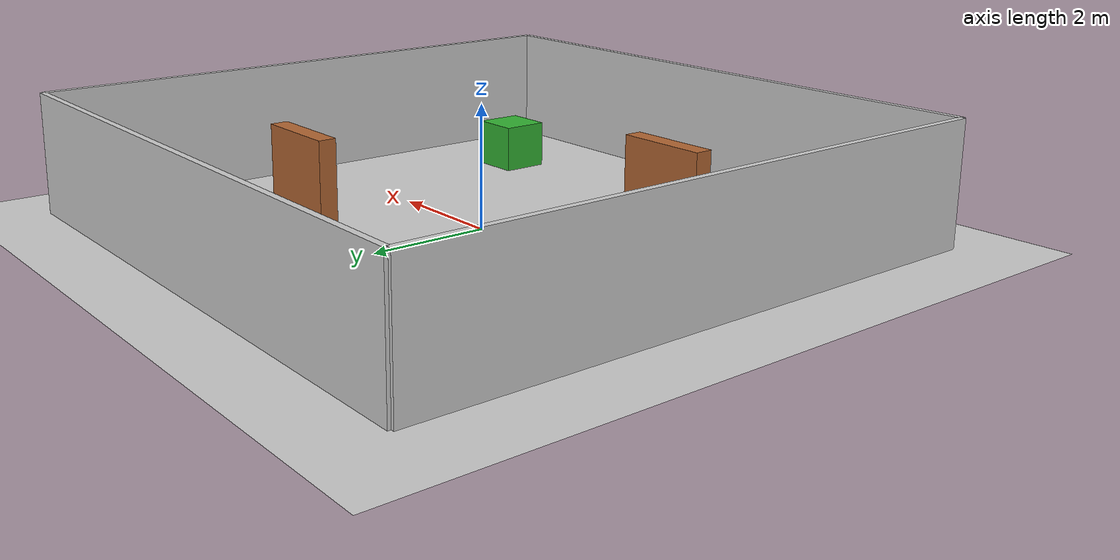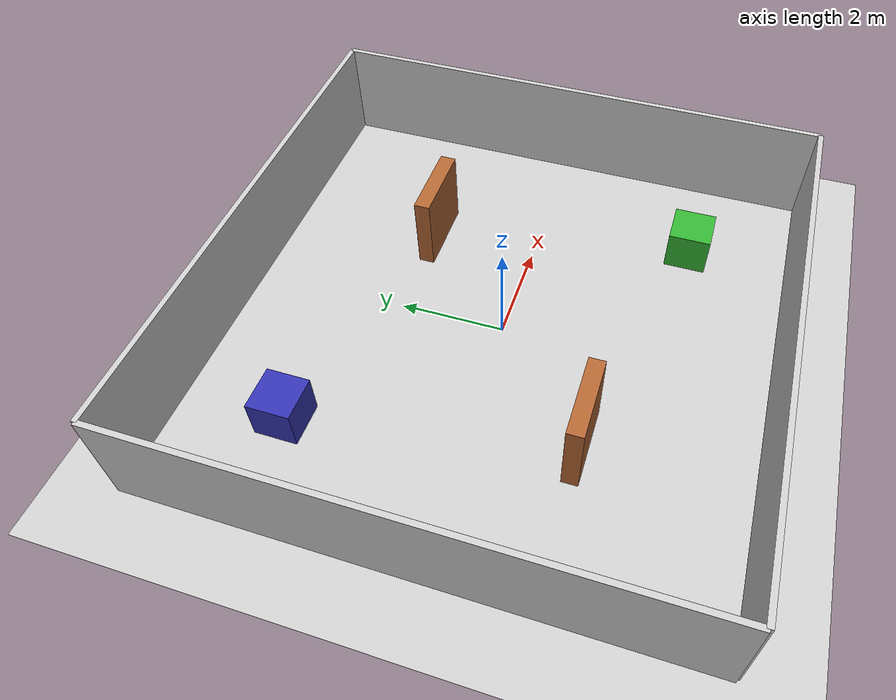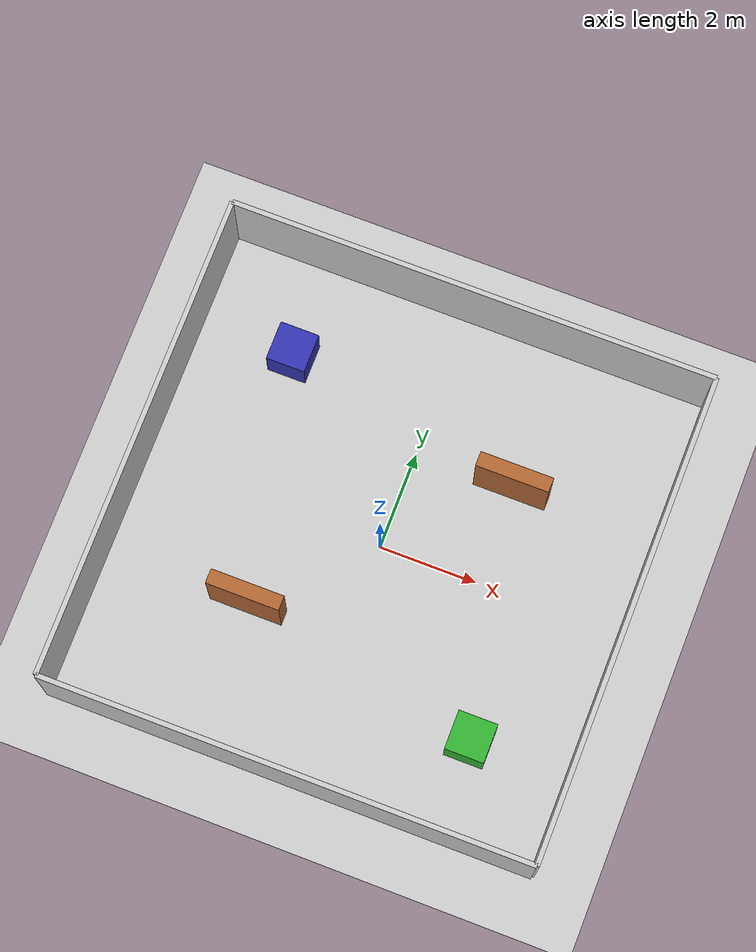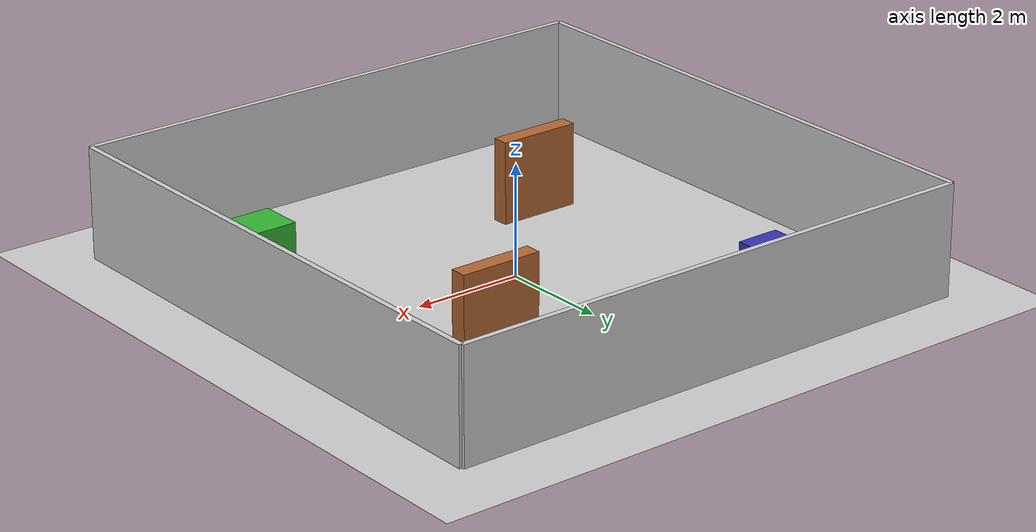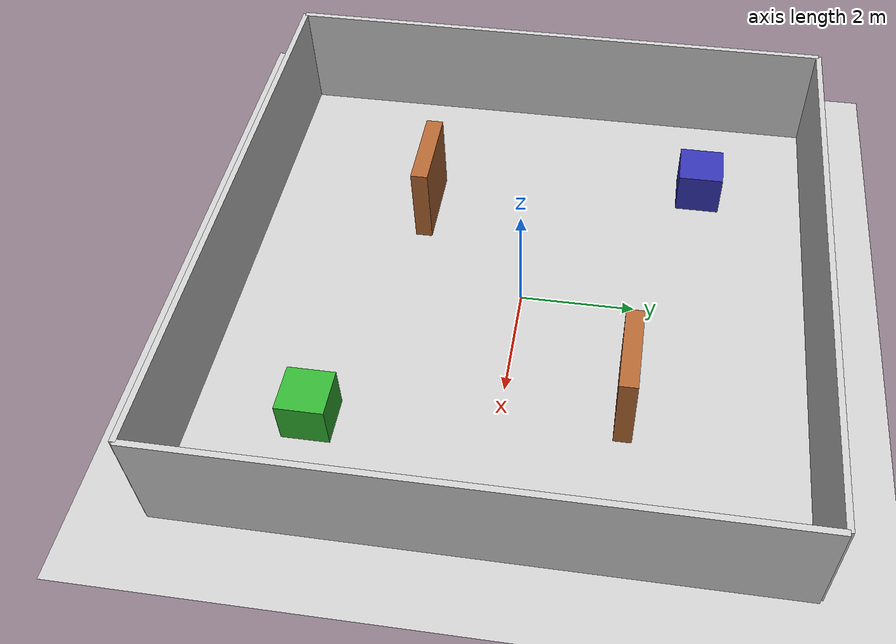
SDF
<?xml version="1.0" ?>
<sdf version="1.6">
  <world name="indoor_warehouse">

    <include>
      <uri>model://ground_plane</uri>
    </include>

    <include>
      <uri>model://sun</uri>
    </include>

    <!-- Warehouse walls -->
    <model name="warehouse_walls">
      <static>true</static>

      <!-- North wall -->
      <link name="north_wall">
        <pose>0 5 1 0 0 0</pose>
        <collision name="collision">
          <geometry>
            <box>
              <size>10 0.1 2</size>
            </box>
          </geometry>
        </collision>
        <visual name="visual">
          <geometry>
            <box>
              <size>10 0.1 2</size>
            </box>
          </geometry>
          <material>
            <ambient>0.8 0.8 0.8 1</ambient>
            <diffuse>0.8 0.8 0.8 1</diffuse>
          </material>
        </visual>
      </link>

      <!-- South wall -->
      <link name="south_wall">
        <pose>0 -5 1 0 0 0</pose>
        <collision name="collision">
          <geometry>
            <box>
              <size>10 0.1 2</size>
            </box>
          </geometry>
        </collision>
        <visual name="visual">
          <geometry>
            <box>
              <size>10 0.1 2</size>
            </box>
          </geometry>
          <material>
            <ambient>0.8 0.8 0.8 1</ambient>
            <diffuse>0.8 0.8 0.8 1</diffuse>
          </material>
        </visual>
      </link>

      <!-- East wall -->
      <link name="east_wall">
        <pose>5 0 1 0 0 0</pose>
        <collision name="collision">
          <geometry>
            <box>
              <size>0.1 10 2</size>
            </box>
          </geometry>
        </collision>
        <visual name="visual">
          <geometry>
            <box>
              <size>0.1 10 2</size>
            </box>
          </geometry>
          <material>
            <ambient>0.8 0.8 0.8 1</ambient>
            <diffuse>0.8 0.8 0.8 1</diffuse>
          </material>
        </visual>
      </link>

      <!-- West wall -->
      <link name="west_wall">
        <pose>-5 0 1 0 0 0</pose>
        <collision name="collision">
          <geometry>
            <box>
              <size>0.1 10 2</size>
            </box>
          </geometry>
        </collision>
        <visual name="visual">
          <geometry>
            <box>
              <size>0.1 10 2</size>
            </box>
          </geometry>
          <material>
            <ambient>0.8 0.8 0.8 1</ambient>
            <diffuse>0.8 0.8 0.8 1</diffuse>
          </material>
        </visual>
      </link>
    </model>

    <!-- Storage shelves -->
    <model name="shelf_1">
      <static>true</static>
      <pose>2 2 0.75 0 0 0</pose>
      <link name="link">
        <collision name="collision">
          <geometry>
            <box>
              <size>1.5 0.3 1.5</size>
            </box>
          </geometry>
        </collision>
        <visual name="visual">
          <geometry>
            <box>
              <size>1.5 0.3 1.5</size>
            </box>
          </geometry>
          <material>
            <ambient>0.7 0.4 0.2 1</ambient>
            <diffuse>0.7 0.4 0.2 1</diffuse>
          </material>
        </visual>
      </link>
    </model>

    <model name="shelf_2">
      <static>true</static>
      <pose>-2 -2 0.75 0 0 0</pose>
      <link name="link">
        <collision name="collision">
          <geometry>
            <box>
              <size>1.5 0.3 1.5</size>
            </box>
          </geometry>
        </collision>
        <visual name="visual">
          <geometry>
            <box>
              <size>1.5 0.3 1.5</size>
            </box>
          </geometry>
          <material>
            <ambient>0.7 0.4 0.2 1</ambient>
            <diffuse>0.7 0.4 0.2 1</diffuse>
          </material>
        </visual>
      </link>
    </model>

    <!-- Delivery stations -->
    <model name="station_a">
      <static>true</static>
      <pose>3 -3 0.4 0 0 0</pose>
      <link name="link">
        <collision name="collision">
          <geometry>
            <box>
              <size>0.8 0.8 0.8</size>
            </box>
          </geometry>
        </collision>
        <visual name="visual">
          <geometry>
            <box>
              <size>0.8 0.8 0.8</size>
            </box>
          </geometry>
          <material>
            <ambient>0.2 0.7 0.2 1</ambient>
            <diffuse>0.2 0.7 0.2 1</diffuse>
          </material>
        </visual>
      </link>
    </model>

    <model name="station_b">
      <static>true</static>
      <pose>-3 3 0.4 0 0 0</pose>
      <link name="link">
        <collision name="collision">
          <geometry>
            <box>
              <size>0.8 0.8 0.8</size>
            </box>
          </geometry>
        </collision>
        <visual name="visual">
          <geometry>
            <box>
              <size>0.8 0.8 0.8</size>
            </box>
          </geometry>
          <material>
            <ambient>0.2 0.2 0.7 1</ambient>
            <diffuse>0.2 0.2 0.7 1</diffuse>
          </material>
        </visual>
      </link>
    </model>

  </world>
</sdf>
